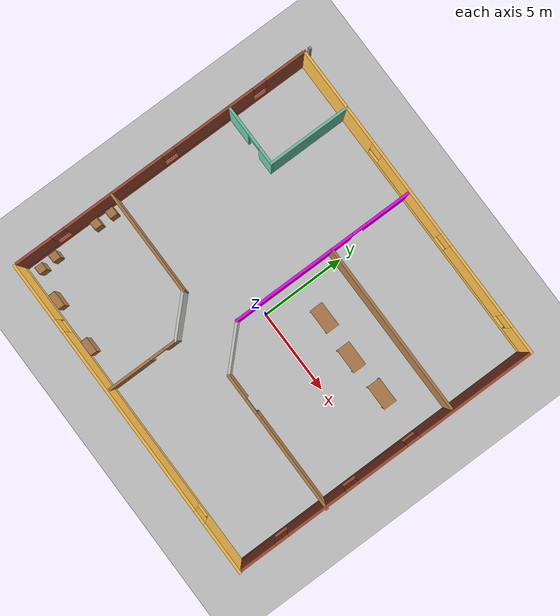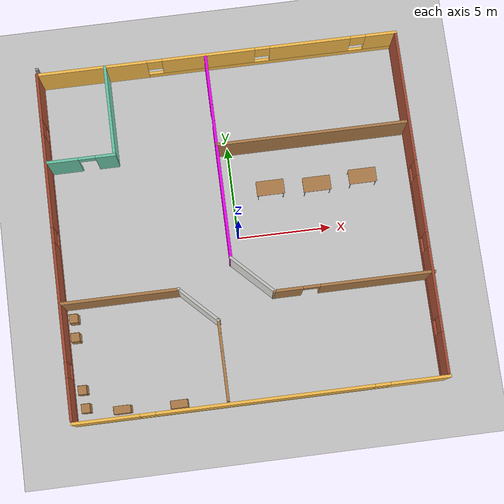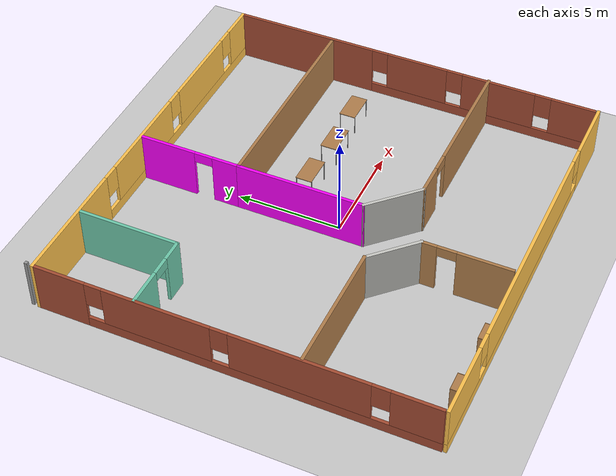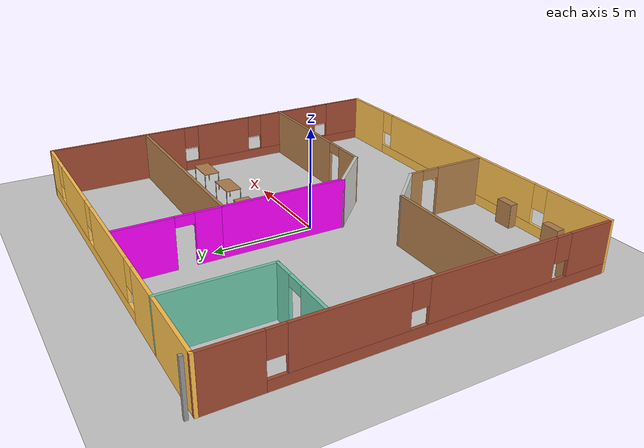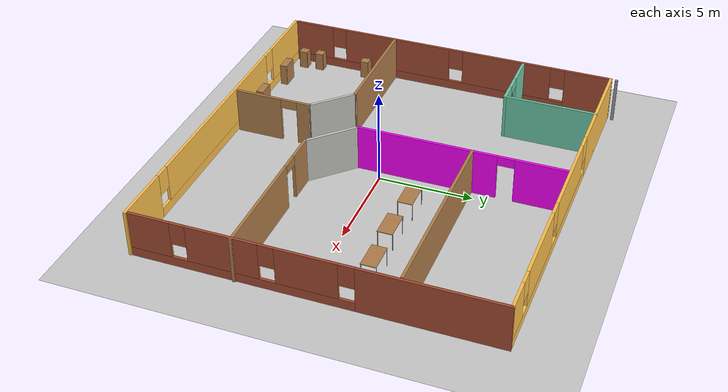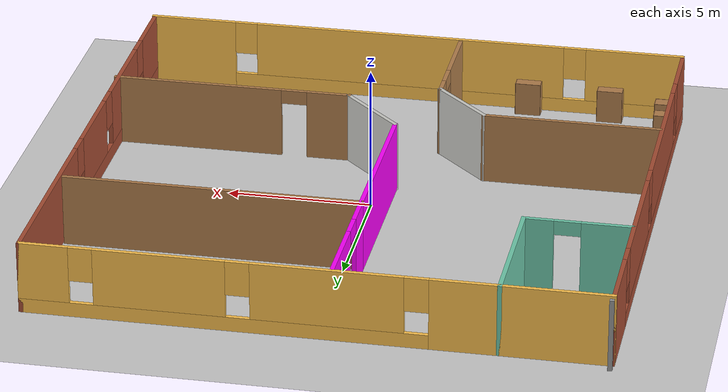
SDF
<sdf version="1.6">
 <world name="default">
  <plugin name="script" filename="libscript.so"/>
  <light name="sun" type="directional">
   <pose>0 0 10 0 -0 0</pose>
   <diffuse>0.8 0.8 0.8 1</diffuse>
   <specular>0.2 0.2 0.2 1</specular>
   <attenuation>
    <range>1000</range>
    <constant>0.9</constant>
    <linear>0.01</linear>
    <quadratic>0.001</quadratic>
   </attenuation>
   <direction>-0.5 0.1 -0.9</direction>
  </light>
  <model name="ground_plane">
   <static>1</static>
   <link name="link">
    <collision name="collision">
     <geometry><plane><normal>0 0 1</normal><size>100 100</size></plane></geometry>
     <surface>
      <contact><collide_bitmask>65535</collide_bitmask></contact>
      <friction><ode><mu>100</mu><mu2>50</mu2></ode></friction>
     </surface>
    </collision>
    <visual name="visual">
     <cast_shadows>0</cast_shadows>
     <geometry><plane><normal>0 0 1</normal><size>100 100</size></plane></geometry>
     <material>
      <script><uri>file://media/materials/scripts/gazebo.material</uri><name>Gazebo/Grey</name></script>
     </material>
    </visual>
   </link>
  </model>
  <gravity>0 0 -9.8</gravity>
  <magnetic_field>6e-06 2.3e-05 -4.2e-05</magnetic_field>
  <atmosphere type="adiabatic"/>
  <physics name="default_physics" default="0" type="ode">
   <max_step_size>0.001</max_step_size>
   <real_time_factor>1</real_time_factor>
   <real_time_update_rate>1000</real_time_update_rate>
  </physics>
  <scene><ambient>0.4 0.4 0.4 1</ambient><background>0.7 0.7 0.7 1</background><shadows>1</shadows></scene>
  <spherical_coordinates>
   <surface_model>EARTH_WGS84</surface_model>
   <latitude_deg>0</latitude_deg>
   <longitude_deg>0</longitude_deg>
   <elevation>0</elevation>
   <heading_deg>0</heading_deg>
  </spherical_coordinates>
  <model name="office">
   <pose>0.078104 0.578612 0 0 -0 0</pose>
   <link name="Wall_11">
    <pose>-0.002319 -9.425 0 0 -0 3.14159</pose>
    <visual name="Wall_11_Visual_0">
     <pose>-8.18908 0 1.25 0 -0 0</pose>
     <geometry><box><size>3.12183 0.15 2.5</size></box></geometry>
     <material>
      <script><uri>file://media/materials/scripts/gazebo.material</uri><name>Gazebo/Grey</name></script>
      <ambient>1 0.764706 0.305882 1</ambient>
     </material>
     <meta><layer>0</layer></meta>
    </visual>
    <collision name="Wall_11_Collision_0">
     <geometry><box><size>3.12183 0.15 2.5</size></box></geometry>
     <pose>-8.18908 0 1.25 0 -0 0</pose>
    </collision>
    <visual name="Wall_11_Visual_1">
     <pose>1.56092 0 0.25 0 -0 0</pose>
     <geometry><box><size>16.3782 0.15 0.5</size></box></geometry>
     <material>
      <script><uri>file://media/materials/scripts/gazebo.material</uri><name>Gazebo/Grey</name></script>
      <ambient>1 0.764706 0.305882 1</ambient>
     </material>
     <meta><layer>0</layer></meta>
    </visual>
    <collision name="Wall_11_Collision_1">
     <geometry><box><size>16.3782 0.15 0.5</size></box></geometry>
     <pose>1.56092 0 0.25 0 -0 0</pose>
    </collision>
    <visual name="Wall_11_Visual_2">
     <pose>-0.200284 0 1.5 0 -0 0</pose>
     <geometry><box><size>11.2558 0.15 2</size></box></geometry>
     <material>
      <script><uri>file://media/materials/scripts/gazebo.material</uri><name>Gazebo/Grey</name></script>
      <ambient>1 0.764706 0.305882 1</ambient>
     </material>
     <meta><layer>0</layer></meta>
    </visual>
    <collision name="Wall_11_Collision_2">
     <geometry><box><size>11.2558 0.15 2</size></box></geometry>
     <pose>-0.200284 0 1.5 0 -0 0</pose>
    </collision>
    <visual name="Wall_11_Visual_3">
     <pose>7.9888 0 1.5 0 -0 0</pose>
     <geometry><box><size>3.5224 0.15 2</size></box></geometry>
     <material>
      <script><uri>file://media/materials/scripts/gazebo.material</uri><name>Gazebo/Grey</name></script>
      <ambient>1 0.764706 0.305882 1</ambient>
     </material>
     <meta><layer>0</layer></meta>
    </visual>
    <collision name="Wall_11_Collision_3">
     <geometry><box><size>3.5224 0.15 2</size></box></geometry>
     <pose>7.9888 0 1.5 0 -0 0</pose>
    </collision>
    <visual name="Wall_11_Visual_4">
     <pose>-6.22816 0 1.9 0 -0 0</pose>
     <geometry><box><size>0.8 0.15 1.2</size></box></geometry>
     <material>
      <script><uri>file://media/materials/scripts/gazebo.material</uri><name>Gazebo/Grey</name></script>
      <ambient>1 0.764706 0.305882 1</ambient>
     </material>
     <meta><layer>0</layer></meta>
    </visual>
    <collision name="Wall_11_Collision_4">
     <geometry><box><size>0.8 0.15 1.2</size></box></geometry>
     <pose>-6.22816 0 1.9 0 -0 0</pose>
    </collision>
    <visual name="Wall_11_Visual_5">
     <pose>5.8276 0 1.9 0 -0 0</pose>
     <geometry><box><size>0.8 0.15 1.2</size></box></geometry>
     <material>
      <script><uri>file://media/materials/scripts/gazebo.material</uri><name>Gazebo/Grey</name></script>
      <ambient>1 0.764706 0.305882 1</ambient>
     </material>
     <meta><layer>0</layer></meta>
    </visual>
    <collision name="Wall_11_Collision_5">
     <geometry><box><size>0.8 0.15 1.2</size></box></geometry>
     <pose>5.8276 0 1.9 0 -0 0</pose>
    </collision>
   </link>
   <link name="Wall_14">
    <collision name="Wall_14_Collision">
     <geometry><box><size>0.15 0.15 2.5</size></box></geometry>
     <pose>0 0 1.25 0 -0 0</pose>
    </collision>
    <visual name="Wall_14_Visual">
     <pose>0 0 1.25 0 -0 0</pose>
     <geometry><box><size>0.15 0.15 2.5</size></box></geometry>
     <material>
      <script><uri>file://media/materials/scripts/gazebo.material</uri><name>Gazebo/Grey</name></script>
      <ambient>1 1 1 1</ambient>
     </material>
     <meta><layer>0</layer></meta>
    </visual>
    <pose>-9.67732 9.425 0 0 -0 0</pose>
   </link>
   <link name="Wall_18">
    <pose>-0.038651 9.10862 0 0 -0 0</pose>
    <visual name="Wall_18_Visual_0">
     <pose>-6.75697 0 1.25 0 -0 0</pose>
     <geometry><box><size>5.98607 0.15 2.5</size></box></geometry>
     <material>
      <script><uri>file://media/materials/scripts/gazebo.material</uri><name>Gazebo/Grey</name></script>
      <ambient>1 0.764706 0.305882 1</ambient>
     </material>
     <meta><layer>0</layer></meta>
    </visual>
    <collision name="Wall_18_Collision_0">
     <geometry><box><size>5.98607 0.15 2.5</size></box></geometry>
     <pose>-6.75697 0 1.25 0 -0 0</pose>
    </collision>
    <visual name="Wall_18_Visual_1">
     <pose>2.99303 0 0.25 0 -0 0</pose>
     <geometry><box><size>13.5139 0.15 0.5</size></box></geometry>
     <material>
      <script><uri>file://media/materials/scripts/gazebo.material</uri><name>Gazebo/Grey</name></script>
      <ambient>1 0.764706 0.305882 1</ambient>
     </material>
     <meta><layer>0</layer></meta>
    </visual>
    <collision name="Wall_18_Collision_1">
     <geometry><box><size>13.5139 0.15 0.5</size></box></geometry>
     <pose>2.99303 0 0.25 0 -0 0</pose>
    </collision>
    <visual name="Wall_18_Visual_2">
     <pose>-0.451128 0 1.5 0 -0 0</pose>
     <geometry><box><size>5.0256 0.15 2</size></box></geometry>
     <material>
      <script><uri>file://media/materials/scripts/gazebo.material</uri><name>Gazebo/Grey</name></script>
      <ambient>1 0.764706 0.305882 1</ambient>
     </material>
     <meta><layer>0</layer></meta>
    </visual>
    <collision name="Wall_18_Collision_2">
     <geometry><box><size>5.0256 0.15 2</size></box></geometry>
     <pose>-0.451128 0 1.5 0 -0 0</pose>
    </collision>
    <visual name="Wall_18_Visual_3">
     <pose>5.05083 0 1.5 0 -0 0</pose>
     <geometry><box><size>4.37831 0.15 2</size></box></geometry>
     <material>
      <script><uri>file://media/materials/scripts/gazebo.material</uri><name>Gazebo/Grey</name></script>
      <ambient>1 0.764706 0.305882 1</ambient>
     </material>
     <meta><layer>0</layer></meta>
    </visual>
    <collision name="Wall_18_Collision_3">
     <geometry><box><size>4.37831 0.15 2</size></box></geometry>
     <pose>5.05083 0 1.5 0 -0 0</pose>
    </collision>
    <visual name="Wall_18_Visual_4">
     <pose>8.89499 0 1.5 0 -0 0</pose>
     <geometry><box><size>1.71001 0.15 2</size></box></geometry>
     <material>
      <script><uri>file://media/materials/scripts/gazebo.material</uri><name>Gazebo/Grey</name></script>
      <ambient>1 0.764706 0.305882 1</ambient>
     </material>
     <meta><layer>0</layer></meta>
    </visual>
    <collision name="Wall_18_Collision_4">
     <geometry><box><size>1.71001 0.15 2</size></box></geometry>
     <pose>8.89499 0 1.5 0 -0 0</pose>
    </collision>
    <visual name="Wall_18_Visual_5">
     <pose>-3.36393 0 1.9 0 -0 0</pose>
     <geometry><box><size>0.8 0.15 1.2</size></box></geometry>
     <material>
      <script><uri>file://media/materials/scripts/gazebo.material</uri><name>Gazebo/Grey</name></script>
      <ambient>1 0.764706 0.305882 1</ambient>
     </material>
     <meta><layer>0</layer></meta>
    </visual>
    <collision name="Wall_18_Collision_5">
     <geometry><box><size>0.8 0.15 1.2</size></box></geometry>
     <pose>-3.36393 0 1.9 0 -0 0</pose>
    </collision>
    <visual name="Wall_18_Visual_6">
     <pose>2.46167 0 1.9 0 -0 0</pose>
     <geometry><box><size>0.8 0.15 1.2</size></box></geometry>
     <material>
      <script><uri>file://media/materials/scripts/gazebo.material</uri><name>Gazebo/Grey</name></script>
      <ambient>1 0.764706 0.305882 1</ambient>
     </material>
     <meta><layer>0</layer></meta>
    </visual>
    <collision name="Wall_18_Collision_6">
     <geometry><box><size>0.8 0.15 1.2</size></box></geometry>
     <pose>2.46167 0 1.9 0 -0 0</pose>
    </collision>
    <visual name="Wall_18_Visual_7">
     <pose>7.63999 0 1.9 0 -0 0</pose>
     <geometry><box><size>0.8 0.15 1.2</size></box></geometry>
     <material>
      <script><uri>file://media/materials/scripts/gazebo.material</uri><name>Gazebo/Grey</name></script>
      <ambient>1 0.764706 0.305882 1</ambient>
     </material>
     <meta><layer>0</layer></meta>
    </visual>
    <collision name="Wall_18_Collision_7">
     <geometry><box><size>0.8 0.15 1.2</size></box></geometry>
     <pose>7.63999 0 1.9 0 -0 0</pose>
    </collision>
   </link>
   <link name="Wall_20">
    <pose>9.63635 -0.066378 0 0 0 -1.5708</pose>
    <visual name="Wall_20_Visual_0">
     <pose>-5.65013 0 1.25 0 -0 0</pose>
     <geometry><box><size>7.19974 0.15 2.5</size></box></geometry>
     <material>
      <script><uri>file://media/materials/scripts/gazebo.material</uri><name>Gazebo/Bricks</name></script>
      <ambient>1 1 1 1</ambient>
     </material>
     <meta><layer>0</layer></meta>
    </visual>
    <collision name="Wall_20_Collision_0">
     <geometry><box><size>7.19974 0.15 2.5</size></box></geometry>
     <pose>-5.65013 0 1.25 0 -0 0</pose>
    </collision>
    <visual name="Wall_20_Visual_1">
     <pose>3.59987 0 0.25 0 -0 0</pose>
     <geometry><box><size>11.3003 0.15 0.5</size></box></geometry>
     <material>
      <script><uri>file://media/materials/scripts/gazebo.material</uri><name>Gazebo/Bricks</name></script>
      <ambient>1 1 1 1</ambient>
     </material>
     <meta><layer>0</layer></meta>
    </visual>
    <collision name="Wall_20_Collision_1">
     <geometry><box><size>11.3003 0.15 0.5</size></box></geometry>
     <pose>3.59987 0 0.25 0 -0 0</pose>
    </collision>
    <visual name="Wall_20_Visual_2">
     <pose>0.291605 0 1.5 0 -0 0</pose>
     <geometry><box><size>3.08374 0.15 2</size></box></geometry>
     <material>
      <script><uri>file://media/materials/scripts/gazebo.material</uri><name>Gazebo/Bricks</name></script>
      <ambient>1 1 1 1</ambient>
     </material>
     <meta><layer>0</layer></meta>
    </visual>
    <collision name="Wall_20_Collision_2">
     <geometry><box><size>3.08374 0.15 2</size></box></geometry>
     <pose>0.291605 0 1.5 0 -0 0</pose>
    </collision>
    <visual name="Wall_20_Visual_3">
     <pose>4.45853 0 1.5 0 -0 0</pose>
     <geometry><box><size>3.65011 0.15 2</size></box></geometry>
     <material>
      <script><uri>file://media/materials/scripts/gazebo.material</uri><name>Gazebo/Bricks</name></script>
      <ambient>1 1 1 1</ambient>
     </material>
     <meta><layer>0</layer></meta>
    </visual>
    <collision name="Wall_20_Collision_3">
     <geometry><box><size>3.65011 0.15 2</size></box></geometry>
     <pose>4.45853 0 1.5 0 -0 0</pose>
    </collision>
    <visual name="Wall_20_Visual_4">
     <pose>8.16679 0 1.5 0 -0 0</pose>
     <geometry><box><size>2.16641 0.15 2</size></box></geometry>
     <material>
      <script><uri>file://media/materials/scripts/gazebo.material</uri><name>Gazebo/Bricks</name></script>
      <ambient>1 1 1 1</ambient>
     </material>
     <meta><layer>0</layer></meta>
    </visual>
    <collision name="Wall_20_Collision_4">
     <geometry><box><size>2.16641 0.15 2</size></box></geometry>
     <pose>8.16679 0 1.5 0 -0 0</pose>
    </collision>
    <visual name="Wall_20_Visual_5">
     <pose>-1.65026 0 1.9 0 -0 0</pose>
     <geometry><box><size>0.8 0.15 1.2</size></box></geometry>
     <material>
      <script><uri>file://media/materials/scripts/gazebo.material</uri><name>Gazebo/Bricks</name></script>
      <ambient>1 1 1 1</ambient>
     </material>
     <meta><layer>0</layer></meta>
    </visual>
    <collision name="Wall_20_Collision_5">
     <geometry><box><size>0.8 0.15 1.2</size></box></geometry>
     <pose>-1.65026 0 1.9 0 -0 0</pose>
    </collision>
    <visual name="Wall_20_Visual_6">
     <pose>2.23347 0 1.9 0 -0 0</pose>
     <geometry><box><size>0.8 0.15 1.2</size></box></geometry>
     <material>
      <script><uri>file://media/materials/scripts/gazebo.material</uri><name>Gazebo/Bricks</name></script>
      <ambient>1 1 1 1</ambient>
     </material>
     <meta><layer>0</layer></meta>
    </visual>
    <collision name="Wall_20_Collision_6">
     <geometry><box><size>0.8 0.15 1.2</size></box></geometry>
     <pose>2.23347 0 1.9 0 -0 0</pose>
    </collision>
    <visual name="Wall_20_Visual_7">
     <pose>6.68359 0 1.9 0 -0 0</pose>
     <geometry><box><size>0.8 0.15 1.2</size></box></geometry>
     <material>
      <script><uri>file://media/materials/scripts/gazebo.material</uri><name>Gazebo/Bricks</name></script>
      <ambient>1 1 1 1</ambient>
     </material>
     <meta><layer>0</layer></meta>
    </visual>
    <collision name="Wall_20_Collision_7">
     <geometry><box><size>0.8 0.15 1.2</size></box></geometry>
     <pose>6.68359 0 1.9 0 -0 0</pose>
    </collision>
   </link>
   <link name="Wall_22">
    <pose>-9.71365 -0.066378 0 0 0 -1.5708</pose>
    <visual name="Wall_22_Visual_0">
     <pose>-7.9561 0 1.25 0 -0 0</pose>
     <geometry><box><size>2.5878 0.15 2.5</size></box></geometry>
     <material>
      <script><uri>file://media/materials/scripts/gazebo.material</uri><name>Gazebo/Bricks</name></script>
      <ambient>1 1 1 1</ambient>
     </material>
     <meta><layer>0</layer></meta>
    </visual>
    <collision name="Wall_22_Collision_0">
     <geometry><box><size>2.5878 0.15 2.5</size></box></geometry>
     <pose>-7.9561 0 1.25 0 -0 0</pose>
    </collision>
    <visual name="Wall_22_Visual_1">
     <pose>1.2939 0 0.25 0 -0 0</pose>
     <geometry><box><size>15.9122 0.15 0.5</size></box></geometry>
     <material>
      <script><uri>file://media/materials/scripts/gazebo.material</uri><name>Gazebo/Bricks</name></script>
      <ambient>1 1 1 1</ambient>
     </material>
     <meta><layer>0</layer></meta>
    </visual>
    <collision name="Wall_22_Collision_1">
     <geometry><box><size>15.9122 0.15 0.5</size></box></geometry>
     <pose>1.2939 0 0.25 0 -0 0</pose>
    </collision>
    <visual name="Wall_22_Visual_2">
     <pose>-3.3494 0 1.5 0 -0 0</pose>
     <geometry><box><size>5.0256 0.15 2</size></box></geometry>
     <material>
      <script><uri>file://media/materials/scripts/gazebo.material</uri><name>Gazebo/Bricks</name></script>
      <ambient>1 1 1 1</ambient>
     </material>
     <meta><layer>0</layer></meta>
    </visual>
    <collision name="Wall_22_Collision_2">
     <geometry><box><size>5.0256 0.15 2</size></box></geometry>
     <pose>-3.3494 0 1.5 0 -0 0</pose>
    </collision>
    <visual name="Wall_22_Visual_3">
     <pose>3.08304 0 1.5 0 -0 0</pose>
     <geometry><box><size>6.23927 0.15 2</size></box></geometry>
     <material>
      <script><uri>file://media/materials/scripts/gazebo.material</uri><name>Gazebo/Bricks</name></script>
      <ambient>1 1 1 1</ambient>
     </material>
     <meta><layer>0</layer></meta>
    </visual>
    <collision name="Wall_22_Collision_3">
     <geometry><box><size>6.23927 0.15 2</size></box></geometry>
     <pose>3.08304 0 1.5 0 -0 0</pose>
    </collision>
    <visual name="Wall_22_Visual_4">
     <pose>8.12634 0 1.5 0 -0 0</pose>
     <geometry><box><size>2.24733 0.15 2</size></box></geometry>
     <material>
      <script><uri>file://media/materials/scripts/gazebo.material</uri><name>Gazebo/Bricks</name></script>
      <ambient>1 1 1 1</ambient>
     </material>
     <meta><layer>0</layer></meta>
    </visual>
    <collision name="Wall_22_Collision_4">
     <geometry><box><size>2.24733 0.15 2</size></box></geometry>
     <pose>8.12634 0 1.5 0 -0 0</pose>
    </collision>
    <visual name="Wall_22_Visual_5">
     <pose>-6.2622 0 1.9 0 -0 0</pose>
     <geometry><box><size>0.8 0.15 1.2</size></box></geometry>
     <material>
      <script><uri>file://media/materials/scripts/gazebo.material</uri><name>Gazebo/Bricks</name></script>
      <ambient>1 1 1 1</ambient>
     </material>
     <meta><layer>0</layer></meta>
    </visual>
    <collision name="Wall_22_Collision_5">
     <geometry><box><size>0.8 0.15 1.2</size></box></geometry>
     <pose>-6.2622 0 1.9 0 -0 0</pose>
    </collision>
    <visual name="Wall_22_Visual_6">
     <pose>-0.436595 0 1.9 0 -0 0</pose>
     <geometry><box><size>0.8 0.15 1.2</size></box></geometry>
     <material>
      <script><uri>file://media/materials/scripts/gazebo.material</uri><name>Gazebo/Bricks</name></script>
      <ambient>1 1 1 1</ambient>
     </material>
     <meta><layer>0</layer></meta>
    </visual>
    <collision name="Wall_22_Collision_6">
     <geometry><box><size>0.8 0.15 1.2</size></box></geometry>
     <pose>-0.436595 0 1.9 0 -0 0</pose>
    </collision>
    <visual name="Wall_22_Visual_7">
     <pose>6.60267 0 1.9 0 -0 0</pose>
     <geometry><box><size>0.8 0.15 1.2</size></box></geometry>
     <material>
      <script><uri>file://media/materials/scripts/gazebo.material</uri><name>Gazebo/Bricks</name></script>
      <ambient>1 1 1 1</ambient>
     </material>
     <meta><layer>0</layer></meta>
    </visual>
    <collision name="Wall_22_Collision_7">
     <geometry><box><size>0.8 0.15 1.2</size></box></geometry>
     <pose>6.60267 0 1.9 0 -0 0</pose>
    </collision>
   </link>
   <link name="Wall_24">
    <collision name="Wall_24_Collision">
     <geometry><box><size>5 0.15 2.5</size></box></geometry>
     <pose>0 0 1.25 0 -0 0</pose>
    </collision>
    <visual name="Wall_24_Visual">
     <pose>0 0 1.25 0 -0 0</pose>
     <geometry><box><size>5 0.15 2.5</size></box></geometry>
     <material>
      <script><uri>file://media/materials/scripts/gazebo.material</uri><name>Gazebo/Grey</name></script>
      <ambient>0.435294 0.796078 0.67451 1</ambient>
     </material>
     <meta><layer>0</layer></meta>
    </visual>
    <pose>-6.07265 6.68362 0 0 0 -1.5708</pose>
   </link>
   <link name="Wall_25">
    <pose>-7.87265 4.25862 0 0 -0 3.14159</pose>
    <visual name="Wall_25_Visual_0">
     <pose>-1.3343 0 1.25 0 -0 0</pose>
     <geometry><box><size>1.0814 0.15 2.5</size></box></geometry>
     <material>
      <script><uri>file://media/materials/scripts/gazebo.material</uri><name>Gazebo/Grey</name></script>
      <ambient>0.435294 0.796078 0.67451 1</ambient>
     </material>
     <meta><layer>0</layer></meta>
    </visual>
    <collision name="Wall_25_Collision_0">
     <geometry><box><size>1.0814 0.15 2.5</size></box></geometry>
     <pose>-1.3343 0 1.25 0 -0 0</pose>
    </collision>
    <visual name="Wall_25_Visual_1">
     <pose>0.9907 0 1.25 0 -0 0</pose>
     <geometry><box><size>1.7686 0.15 2.5</size></box></geometry>
     <material>
      <script><uri>file://media/materials/scripts/gazebo.material</uri><name>Gazebo/Grey</name></script>
      <ambient>0.435294 0.796078 0.67451 1</ambient>
     </material>
     <meta><layer>0</layer></meta>
    </visual>
    <collision name="Wall_25_Collision_1">
     <geometry><box><size>1.7686 0.15 2.5</size></box></geometry>
     <pose>0.9907 0 1.25 0 -0 0</pose>
    </collision>
    <visual name="Wall_25_Visual_2">
     <pose>-0.343599 0 2.25 0 -0 0</pose>
     <geometry><box><size>0.9 0.15 0.5</size></box></geometry>
     <material>
      <script><uri>file://media/materials/scripts/gazebo.material</uri><name>Gazebo/Grey</name></script>
      <ambient>0.435294 0.796078 0.67451 1</ambient>
     </material>
     <meta><layer>0</layer></meta>
    </visual>
    <collision name="Wall_25_Collision_2">
     <geometry><box><size>0.9 0.15 0.5</size></box></geometry>
     <pose>-0.343599 0 2.25 0 -0 0</pose>
    </collision>
   </link>
   <link name="Wall_27">
    <collision name="Wall_27_Collision">
     <geometry><box><size>6.25 0.15 2.5</size></box></geometry>
     <pose>0 0 1.25 0 -0 0</pose>
    </collision>
    <visual name="Wall_27_Visual">
     <pose>0 0 1.25 0 -0 0</pose>
     <geometry><box><size>6.25 0.15 2.5</size></box></geometry>
     <material>
      <script><uri>file://media/materials/scripts/gazebo.material</uri><name>Gazebo/Wood</name></script>
      <ambient>1 1 1 1</ambient>
     </material>
     <meta><layer>0</layer></meta>
    </visual>
    <pose>-6.58274 -3.27079 0 0 -0 0</pose>
   </link>
   <link name="Wall_28">
    <collision name="Wall_28_Collision">
     <geometry><box><size>2.75 0.15 2.5</size></box></geometry>
     <pose>0 0 1.25 0 -0 0</pose>
    </collision>
    <visual name="Wall_28_Visual">
     <pose>0 0 1.25 0 -0 0</pose>
     <geometry><box><size>2.75 0.15 2.5</size></box></geometry>
     <material>
      <script><uri>file://media/materials/scripts/gazebo.material</uri><name>Gazebo/CeilingTiled</name></script>
      <ambient>1 1 1 1</ambient>
     </material>
     <meta><layer>0</layer></meta>
    </visual>
    <pose>-2.6135 -4.19002 0 0 0 -0.785398</pose>
   </link>
   <link name="Wall_29">
    <pose>-1.69426 -7.15926 0 0 0 -1.5708</pose>
    <visual name="Wall_29_Visual_0">
     <pose>-1.73488 0 1.25 0 -0 0</pose>
     <geometry><box><size>0.780235 0.15 2.5</size></box></geometry>
     <material>
      <script><uri>file://media/materials/scripts/gazebo.material</uri><name>Gazebo/Wood</name></script>
      <ambient>1 1 1 1</ambient>
     </material>
     <meta><layer>0</layer></meta>
    </visual>
    <collision name="Wall_29_Collision_0">
     <geometry><box><size>0.780235 0.15 2.5</size></box></geometry>
     <pose>-1.73488 0 1.25 0 -0 0</pose>
    </collision>
    <visual name="Wall_29_Visual_1">
     <pose>0.840118 0 1.25 0 -0 0</pose>
     <geometry><box><size>2.56976 0.15 2.5</size></box></geometry>
     <material>
      <script><uri>file://media/materials/scripts/gazebo.material</uri><name>Gazebo/Wood</name></script>
      <ambient>1 1 1 1</ambient>
     </material>
     <meta><layer>0</layer></meta>
    </visual>
    <collision name="Wall_29_Collision_1">
     <geometry><box><size>2.56976 0.15 2.5</size></box></geometry>
     <pose>0.840118 0 1.25 0 -0 0</pose>
    </collision>
    <visual name="Wall_29_Visual_2">
     <pose>-0.894765 0 2.25 0 -0 0</pose>
     <geometry><box><size>0.9 0.15 0.5</size></box></geometry>
     <material>
      <script><uri>file://media/materials/scripts/gazebo.material</uri><name>Gazebo/Wood</name></script>
      <ambient>1 1 1 1</ambient>
     </material>
     <meta><layer>0</layer></meta>
    </visual>
    <collision name="Wall_29_Collision_2">
     <geometry><box><size>0.9 0.15 0.5</size></box></geometry>
     <pose>-0.894765 0 2.25 0 -0 0</pose>
    </collision>
   </link>
   <link name="Wall_31">
    <collision name="Wall_31_Collision">
     <geometry><box><size>3 0.15 2.5</size></box></geometry>
     <pose>0 0 1.25 0 -0 0</pose>
    </collision>
    <visual name="Wall_31_Visual">
     <pose>0 0 1.25 0 -0 0</pose>
     <geometry><box><size>3 0.15 2.5</size></box></geometry>
     <material>
      <script><uri>file://media/materials/scripts/gazebo.material</uri><name>Gazebo/CeilingTiled</name></script>
      <ambient>1 1 1 1</ambient>
     </material>
     <meta><layer>0</layer></meta>
    </visual>
    <pose>0.356025 -2.98383 0 0 0 -0.785398</pose>
   </link>
   <link name="Wall_32">
    <pose>5.53865 -3.99146 0 0 -0 0</pose>
    <visual name="Wall_32_Visual_0">
     <pose>-3.4628 0 1.25 0 -0 0</pose>
     <geometry><box><size>1.57439 0.15 2.5</size></box></geometry>
     <material>
      <script><uri>file://media/materials/scripts/gazebo.material</uri><name>Gazebo/Wood</name></script>
      <ambient>1 1 1 1</ambient>
     </material>
     <meta><layer>0</layer></meta>
    </visual>
    <collision name="Wall_32_Collision_0">
     <geometry><box><size>1.57439 0.15 2.5</size></box></geometry>
     <pose>-3.4628 0 1.25 0 -0 0</pose>
    </collision>
    <visual name="Wall_32_Visual_1">
     <pose>1.2372 0 1.25 0 -0 0</pose>
     <geometry><box><size>6.02561 0.15 2.5</size></box></geometry>
     <material>
      <script><uri>file://media/materials/scripts/gazebo.material</uri><name>Gazebo/Wood</name></script>
      <ambient>1 1 1 1</ambient>
     </material>
     <meta><layer>0</layer></meta>
    </visual>
    <collision name="Wall_32_Collision_1">
     <geometry><box><size>6.02561 0.15 2.5</size></box></geometry>
     <pose>1.2372 0 1.25 0 -0 0</pose>
    </collision>
    <visual name="Wall_32_Visual_2">
     <pose>-2.22561 0 2.25 0 -0 0</pose>
     <geometry><box><size>0.9 0.15 0.5</size></box></geometry>
     <material>
      <script><uri>file://media/materials/scripts/gazebo.material</uri><name>Gazebo/Wood</name></script>
      <ambient>1 1 1 1</ambient>
     </material>
     <meta><layer>0</layer></meta>
    </visual>
    <collision name="Wall_32_Collision_2">
     <geometry><box><size>0.9 0.15 0.5</size></box></geometry>
     <pose>-2.22561 0 2.25 0 -0 0</pose>
    </collision>
   </link>
   <link name="Wall_34">
    <collision name="Wall_34_Collision">
     <geometry><box><size>6.25 0.15 2.5</size></box></geometry>
     <pose>0 0 1.25 0 -0 0</pose>
    </collision>
    <visual name="Wall_34_Visual">
     <pose>0 0 1.25 0 -0 0</pose>
     <geometry><box><size>6.25 0.15 2.5</size></box></geometry>
     <material>
      <script><uri>file://media/materials/scripts/gazebo.material</uri><name>Gazebo/Grey</name></script>
      <ambient>1 0 1 1</ambient>
     </material>
     <meta><layer>0</layer></meta>
    </visual>
    <pose>-0.651602 1.07379 0 0 -0 1.5708</pose>
   </link>
   <link name="Wall_35">
    <collision name="Wall_35_Collision">
     <geometry><box><size>10.25 0.15 2.5</size></box></geometry>
     <pose>0 0 1.25 0 -0 0</pose>
    </collision>
    <visual name="Wall_35_Visual">
     <pose>0 0 1.25 0 -0 0</pose>
     <geometry><box><size>10.25 0.15 2.5</size></box></geometry>
     <material>
      <script><uri>file://media/materials/scripts/gazebo.material</uri><name>Gazebo/Wood</name></script>
      <ambient>1 1 1 1</ambient>
     </material>
     <meta><layer>0</layer></meta>
    </visual>
    <pose>4.3984 4.12379 0 0 -0 0</pose>
   </link>
   <link name="Wall_38">
    <pose>-0.651602 6.54879 0 0 -0 1.5708</pose>
    <visual name="Wall_38_Visual_0">
     <pose>-1.81331 0 1.25 0 -0 0</pose>
     <geometry><box><size>1.37338 0.15 2.5</size></box></geometry>
     <material>
      <script><uri>file://media/materials/scripts/gazebo.material</uri><name>Gazebo/Grey</name></script>
      <ambient>1 0 1 1</ambient>
     </material>
     <meta><layer>0</layer></meta>
    </visual>
    <collision name="Wall_38_Collision_0">
     <geometry><box><size>1.37338 0.15 2.5</size></box></geometry>
     <pose>-1.81331 0 1.25 0 -0 0</pose>
    </collision>
    <visual name="Wall_38_Visual_1">
     <pose>1.13669 0 1.25 0 -0 0</pose>
     <geometry><box><size>2.72662 0.15 2.5</size></box></geometry>
     <material>
      <script><uri>file://media/materials/scripts/gazebo.material</uri><name>Gazebo/Grey</name></script>
      <ambient>1 0 1 1</ambient>
     </material>
     <meta><layer>0</layer></meta>
    </visual>
    <collision name="Wall_38_Collision_1">
     <geometry><box><size>2.72662 0.15 2.5</size></box></geometry>
     <pose>1.13669 0 1.25 0 -0 0</pose>
    </collision>
    <visual name="Wall_38_Visual_2">
     <pose>-0.676618 0 2.25 0 -0 0</pose>
     <geometry><box><size>0.9 0.15 0.5</size></box></geometry>
     <material>
      <script><uri>file://media/materials/scripts/gazebo.material</uri><name>Gazebo/Grey</name></script>
      <ambient>1 0 1 1</ambient>
     </material>
     <meta><layer>0</layer></meta>
    </visual>
    <collision name="Wall_38_Collision_2">
     <geometry><box><size>0.9 0.15 0.5</size></box></geometry>
     <pose>-0.676618 0 2.25 0 -0 0</pose>
    </collision>
   </link>
   <static>1</static>
  </model>
  <model name="table">
   <static>1</static>
   <link name="link">
    <collision name="surface">
     <pose>0 0 1 0 -0 0</pose>
     <geometry><box><size>1.5 0.8 0.03</size></box></geometry>
     <surface><friction><ode><mu>0.6</mu><mu2>0.6</mu2></ode></friction></surface>
    </collision>
    <visual name="visual1">
     <pose>0 0 1 0 -0 0</pose>
     <geometry><box><size>1.5 0.8 0.03</size></box></geometry>
     <material>
      <script><uri>file://media/materials/scripts/gazebo.material</uri><name>Gazebo/Wood</name></script>
     </material>
    </visual>
    <collision name="front_left_leg">
     <pose>0.68 0.38 0.5 0 -0 0</pose>
     <geometry><cylinder><radius>0.02</radius><length>1</length></cylinder></geometry>
    </collision>
    <visual name="front_left_leg">
     <pose>0.68 0.38 0.5 0 -0 0</pose>
     <geometry><cylinder><radius>0.02</radius><length>1</length></cylinder></geometry>
     <material>
      <script><uri>file://media/materials/scripts/gazebo.material</uri><name>Gazebo/Grey</name></script>
     </material>
    </visual>
    <collision name="front_right_leg">
     <pose>0.68 -0.38 0.5 0 -0 0</pose>
     <geometry><cylinder><radius>0.02</radius><length>1</length></cylinder></geometry>
    </collision>
    <visual name="front_right_leg">
     <pose>0.68 -0.38 0.5 0 -0 0</pose>
     <geometry><cylinder><radius>0.02</radius><length>1</length></cylinder></geometry>
     <material>
      <script><uri>file://media/materials/scripts/gazebo.material</uri><name>Gazebo/Grey</name></script>
     </material>
    </visual>
    <collision name="back_right_leg">
     <pose>-0.68 -0.38 0.5 0 -0 0</pose>
     <geometry><cylinder><radius>0.02</radius><length>1</length></cylinder></geometry>
    </collision>
    <visual name="back_right_leg">
     <pose>-0.68 -0.38 0.5 0 -0 0</pose>
     <geometry><cylinder><radius>0.02</radius><length>1</length></cylinder></geometry>
     <material>
      <script><uri>file://media/materials/scripts/gazebo.material</uri><name>Gazebo/Grey</name></script>
     </material>
    </visual>
    <collision name="back_left_leg">
     <pose>-0.68 0.38 0.5 0 -0 0</pose>
     <geometry><cylinder><radius>0.02</radius><length>1</length></cylinder></geometry>
    </collision>
    <visual name="back_left_leg">
     <pose>-0.68 0.38 0.5 0 -0 0</pose>
     <geometry><cylinder><radius>0.02</radius><length>1</length></cylinder></geometry>
     <material>
      <script><uri>file://media/materials/scripts/gazebo.material</uri><name>Gazebo/Grey</name></script>
     </material>
    </visual>
   </link>
   <pose>2.01405 2.36525 0 0 -0 0</pose>
  </model>
  <model name="table_0">
   <static>1</static>
   <link name="link">
    <collision name="surface">
     <pose>0 0 1 0 -0 0</pose>
     <geometry><box><size>1.5 0.8 0.03</size></box></geometry>
     <surface><friction><ode><mu>0.6</mu><mu2>0.6</mu2></ode></friction></surface>
    </collision>
    <visual name="visual1">
     <pose>0 0 1 0 -0 0</pose>
     <geometry><box><size>1.5 0.8 0.03</size></box></geometry>
     <material>
      <script><uri>file://media/materials/scripts/gazebo.material</uri><name>Gazebo/Wood</name></script>
     </material>
    </visual>
    <collision name="front_left_leg">
     <pose>0.68 0.38 0.5 0 -0 0</pose>
     <geometry><cylinder><radius>0.02</radius><length>1</length></cylinder></geometry>
    </collision>
    <visual name="front_left_leg">
     <pose>0.68 0.38 0.5 0 -0 0</pose>
     <geometry><cylinder><radius>0.02</radius><length>1</length></cylinder></geometry>
     <material>
      <script><uri>file://media/materials/scripts/gazebo.material</uri><name>Gazebo/Grey</name></script>
     </material>
    </visual>
    <collision name="front_right_leg">
     <pose>0.68 -0.38 0.5 0 -0 0</pose>
     <geometry><cylinder><radius>0.02</radius><length>1</length></cylinder></geometry>
    </collision>
    <visual name="front_right_leg">
     <pose>0.68 -0.38 0.5 0 -0 0</pose>
     <geometry><cylinder><radius>0.02</radius><length>1</length></cylinder></geometry>
     <material>
      <script><uri>file://media/materials/scripts/gazebo.material</uri><name>Gazebo/Grey</name></script>
     </material>
    </visual>
    <collision name="back_right_leg">
     <pose>-0.68 -0.38 0.5 0 -0 0</pose>
     <geometry><cylinder><radius>0.02</radius><length>1</length></cylinder></geometry>
    </collision>
    <visual name="back_right_leg">
     <pose>-0.68 -0.38 0.5 0 -0 0</pose>
     <geometry><cylinder><radius>0.02</radius><length>1</length></cylinder></geometry>
     <material>
      <script><uri>file://media/materials/scripts/gazebo.material</uri><name>Gazebo/Grey</name></script>
     </material>
    </visual>
    <collision name="back_left_leg">
     <pose>-0.68 0.38 0.5 0 -0 0</pose>
     <geometry><cylinder><radius>0.02</radius><length>1</length></cylinder></geometry>
    </collision>
    <visual name="back_left_leg">
     <pose>-0.68 0.38 0.5 0 -0 0</pose>
     <geometry><cylinder><radius>0.02</radius><length>1</length></cylinder></geometry>
     <material>
      <script><uri>file://media/materials/scripts/gazebo.material</uri><name>Gazebo/Grey</name></script>
     </material>
    </visual>
   </link>
   <pose>4.51769 2.26549 0 0 -0 0</pose>
  </model>
  <model name="table_1">
   <static>1</static>
   <link name="link">
    <collision name="surface">
     <pose>0 0 1 0 -0 0</pose>
     <geometry><box><size>1.5 0.8 0.03</size></box></geometry>
     <surface><friction><ode><mu>0.6</mu><mu2>0.6</mu2></ode></friction></surface>
    </collision>
    <visual name="visual1">
     <pose>0 0 1 0 -0 0</pose>
     <geometry><box><size>1.5 0.8 0.03</size></box></geometry>
     <material>
      <script><uri>file://media/materials/scripts/gazebo.material</uri><name>Gazebo/Wood</name></script>
     </material>
    </visual>
    <collision name="front_left_leg">
     <pose>0.68 0.38 0.5 0 -0 0</pose>
     <geometry><cylinder><radius>0.02</radius><length>1</length></cylinder></geometry>
    </collision>
    <visual name="front_left_leg">
     <pose>0.68 0.38 0.5 0 -0 0</pose>
     <geometry><cylinder><radius>0.02</radius><length>1</length></cylinder></geometry>
     <material>
      <script><uri>file://media/materials/scripts/gazebo.material</uri><name>Gazebo/Grey</name></script>
     </material>
    </visual>
    <collision name="front_right_leg">
     <pose>0.68 -0.38 0.5 0 -0 0</pose>
     <geometry><cylinder><radius>0.02</radius><length>1</length></cylinder></geometry>
    </collision>
    <visual name="front_right_leg">
     <pose>0.68 -0.38 0.5 0 -0 0</pose>
     <geometry><cylinder><radius>0.02</radius><length>1</length></cylinder></geometry>
     <material>
      <script><uri>file://media/materials/scripts/gazebo.material</uri><name>Gazebo/Grey</name></script>
     </material>
    </visual>
    <collision name="back_right_leg">
     <pose>-0.68 -0.38 0.5 0 -0 0</pose>
     <geometry><cylinder><radius>0.02</radius><length>1</length></cylinder></geometry>
    </collision>
    <visual name="back_right_leg">
     <pose>-0.68 -0.38 0.5 0 -0 0</pose>
     <geometry><cylinder><radius>0.02</radius><length>1</length></cylinder></geometry>
     <material>
      <script><uri>file://media/materials/scripts/gazebo.material</uri><name>Gazebo/Grey</name></script>
     </material>
    </visual>
    <collision name="back_left_leg">
     <pose>-0.68 0.38 0.5 0 -0 0</pose>
     <geometry><cylinder><radius>0.02</radius><length>1</length></cylinder></geometry>
    </collision>
    <visual name="back_left_leg">
     <pose>-0.68 0.38 0.5 0 -0 0</pose>
     <geometry><cylinder><radius>0.02</radius><length>1</length></cylinder></geometry>
     <material>
      <script><uri>file://media/materials/scripts/gazebo.material</uri><name>Gazebo/Grey</name></script>
     </material>
    </visual>
   </link>
   <pose>7.0072 2.40003 0 0 -0 0</pose>
  </model>
  <model name="cabinet">
   <static>1</static>
   <link name="cabinet_bottom_plate">
    <inertial>
     <pose>0 0 -1 0 -0 0</pose>
     <inertia><ixx>2.05</ixx><ixy>0</ixy><ixz>0</ixz><iyy>2.05</iyy><iyz>0</iyz><izz>2.05</izz></inertia>
     <mass>25</mass>
    </inertial>
    <collision name="cabinet_bottom_plate_geom">
     <pose>0 0 0.01 0 -0 0</pose>
     <geometry><box><size>0.45 0.45 0.02</size></box></geometry>
    </collision>
    <visual name="cabinet_bottom_plate_geom_visual">
     <pose>0 0 0.01 0 -0 0</pose>
     <geometry><box><size>0.45 0.45 0.02</size></box></geometry>
     <material>
      <script><uri>file://media/materials/scripts/gazebo.material</uri><name>Gazebo/Wood</name></script>
     </material>
    </visual>
    <collision name="cabinet_bottom_plate_geom_cabinet_back_plate">
     <pose>0.235 0 0.51 0 -0 0</pose>
     <geometry><box><size>0.02 0.45 1.02</size></box></geometry>
    </collision>
    <visual name="cabinet_bottom_plate_geom_cabinet_back_plate_visual">
     <pose>0.235 0 0.51 0 -0 0</pose>
     <geometry><box><size>0.02 0.45 1.02</size></box></geometry>
     <material>
      <script><uri>file://media/materials/scripts/gazebo.material</uri><name>Gazebo/Wood</name></script>
     </material>
    </visual>
    <collision name="cabinet_bottom_plate_geom_cabinet_left_plate">
     <pose>0 0.235 0.51 0 -0 0</pose>
     <geometry><box><size>0.45 0.02 1.02</size></box></geometry>
    </collision>
    <visual name="cabinet_bottom_plate_geom_cabinet_left_plate_visual">
     <pose>0 0.235 0.51 0 -0 0</pose>
     <geometry><box><size>0.45 0.02 1.02</size></box></geometry>
     <material>
      <script><uri>file://media/materials/scripts/gazebo.material</uri><name>Gazebo/Wood</name></script>
     </material>
    </visual>
    <collision name="cabinet_bottom_plate_geom_cabinet_middle_plate">
     <pose>0 0 0.51 0 -0 0</pose>
     <geometry><box><size>0.45 0.45 0.02</size></box></geometry>
    </collision>
    <visual name="cabinet_bottom_plate_geom_cabinet_middle_plate_visual">
     <pose>0 0 0.51 0 -0 0</pose>
     <geometry><box><size>0.45 0.45 0.02</size></box></geometry>
     <material>
      <script><uri>file://media/materials/scripts/gazebo.material</uri><name>Gazebo/Wood</name></script>
     </material>
    </visual>
    <collision name="cabinet_bottom_plate_geom_cabinet_right_plate">
     <pose>0 -0.235 0.51 0 -0 0</pose>
     <geometry><box><size>0.45 0.02 1.02</size></box></geometry>
    </collision>
    <visual name="cabinet_bottom_plate_geom_cabinet_right_plate_visual">
     <pose>0 -0.235 0.51 0 -0 0</pose>
     <geometry><box><size>0.45 0.02 1.02</size></box></geometry>
     <material>
      <script><uri>file://media/materials/scripts/gazebo.material</uri><name>Gazebo/Wood</name></script>
     </material>
    </visual>
    <collision name="cabinet_bottom_plate_geom_cabinet_top_plate">
     <pose>0 0 1.01 0 -0 0</pose>
     <geometry><box><size>0.45 0.45 0.02</size></box></geometry>
    </collision>
    <visual name="cabinet_bottom_plate_geom_cabinet_top_plate_visual">
     <pose>0 0 1.01 0 -0 0</pose>
     <geometry><box><size>0.45 0.45 0.02</size></box></geometry>
     <material>
      <script><uri>file://media/materials/scripts/gazebo.material</uri><name>Gazebo/Wood</name></script>
     </material>
    </visual>
   </link>
   <pose>-9.01438 -8.0702 0 0 -0 0</pose>
  </model>
  <model name="cabinet_clone">
   <static>1</static>
   <link name="cabinet_bottom_plate">
    <inertial>
     <pose>0 0 -1 0 -0 0</pose>
     <inertia><ixx>2.05</ixx><ixy>0</ixy><ixz>0</ixz><iyy>2.05</iyy><iyz>0</iyz><izz>2.05</izz></inertia>
     <mass>25</mass>
    </inertial>
    <collision name="cabinet_bottom_plate_geom">
     <pose>0 0 0.01 0 -0 0</pose>
     <geometry><box><size>0.45 0.45 0.02</size></box></geometry>
    </collision>
    <visual name="cabinet_bottom_plate_geom_visual">
     <pose>0 0 0.01 0 -0 0</pose>
     <geometry><box><size>0.45 0.45 0.02</size></box></geometry>
     <material>
      <script><uri>file://media/materials/scripts/gazebo.material</uri><name>Gazebo/Wood</name></script>
     </material>
    </visual>
    <collision name="cabinet_bottom_plate_geom_cabinet_back_plate">
     <pose>0.235 0 0.51 0 -0 0</pose>
     <geometry><box><size>0.02 0.45 1.02</size></box></geometry>
    </collision>
    <visual name="cabinet_bottom_plate_geom_cabinet_back_plate_visual">
     <pose>0.235 0 0.51 0 -0 0</pose>
     <geometry><box><size>0.02 0.45 1.02</size></box></geometry>
     <material>
      <script><uri>file://media/materials/scripts/gazebo.material</uri><name>Gazebo/Wood</name></script>
     </material>
    </visual>
    <collision name="cabinet_bottom_plate_geom_cabinet_left_plate">
     <pose>0 0.235 0.51 0 -0 0</pose>
     <geometry><box><size>0.45 0.02 1.02</size></box></geometry>
    </collision>
    <visual name="cabinet_bottom_plate_geom_cabinet_left_plate_visual">
     <pose>0 0.235 0.51 0 -0 0</pose>
     <geometry><box><size>0.45 0.02 1.02</size></box></geometry>
     <material>
      <script><uri>file://media/materials/scripts/gazebo.material</uri><name>Gazebo/Wood</name></script>
     </material>
    </visual>
    <collision name="cabinet_bottom_plate_geom_cabinet_middle_plate">
     <pose>0 0 0.51 0 -0 0</pose>
     <geometry><box><size>0.45 0.45 0.02</size></box></geometry>
    </collision>
    <visual name="cabinet_bottom_plate_geom_cabinet_middle_plate_visual">
     <pose>0 0 0.51 0 -0 0</pose>
     <geometry><box><size>0.45 0.45 0.02</size></box></geometry>
     <material>
      <script><uri>file://media/materials/scripts/gazebo.material</uri><name>Gazebo/Wood</name></script>
     </material>
    </visual>
    <collision name="cabinet_bottom_plate_geom_cabinet_right_plate">
     <pose>0 -0.235 0.51 0 -0 0</pose>
     <geometry><box><size>0.45 0.02 1.02</size></box></geometry>
    </collision>
    <visual name="cabinet_bottom_plate_geom_cabinet_right_plate_visual">
     <pose>0 -0.235 0.51 0 -0 0</pose>
     <geometry><box><size>0.45 0.02 1.02</size></box></geometry>
     <material>
      <script><uri>file://media/materials/scripts/gazebo.material</uri><name>Gazebo/Wood</name></script>
     </material>
    </visual>
    <collision name="cabinet_bottom_plate_geom_cabinet_top_plate">
     <pose>0 0 1.01 0 -0 0</pose>
     <geometry><box><size>0.45 0.45 0.02</size></box></geometry>
    </collision>
    <visual name="cabinet_bottom_plate_geom_cabinet_top_plate_visual">
     <pose>0 0 1.01 0 -0 0</pose>
     <geometry><box><size>0.45 0.45 0.02</size></box></geometry>
     <material>
      <script><uri>file://media/materials/scripts/gazebo.material</uri><name>Gazebo/Wood</name></script>
     </material>
    </visual>
   </link>
   <pose>-9.09484 -7.11192 0 0 -0 0</pose>
  </model>
  <model name="cabinet_clone_0">
   <static>1</static>
   <link name="cabinet_bottom_plate">
    <inertial>
     <pose>0 0 -1 0 -0 0</pose>
     <inertia><ixx>2.05</ixx><ixy>0</ixy><ixz>0</ixz><iyy>2.05</iyy><iyz>0</iyz><izz>2.05</izz></inertia>
     <mass>25</mass>
    </inertial>
    <collision name="cabinet_bottom_plate_geom">
     <pose>0 0 0.01 0 -0 0</pose>
     <geometry><box><size>0.45 0.45 0.02</size></box></geometry>
    </collision>
    <visual name="cabinet_bottom_plate_geom_visual">
     <pose>0 0 0.01 0 -0 0</pose>
     <geometry><box><size>0.45 0.45 0.02</size></box></geometry>
     <material>
      <script><uri>file://media/materials/scripts/gazebo.material</uri><name>Gazebo/Wood</name></script>
     </material>
    </visual>
    <collision name="cabinet_bottom_plate_geom_cabinet_back_plate">
     <pose>0.235 0 0.51 0 -0 0</pose>
     <geometry><box><size>0.02 0.45 1.02</size></box></geometry>
    </collision>
    <visual name="cabinet_bottom_plate_geom_cabinet_back_plate_visual">
     <pose>0.235 0 0.51 0 -0 0</pose>
     <geometry><box><size>0.02 0.45 1.02</size></box></geometry>
     <material>
      <script><uri>file://media/materials/scripts/gazebo.material</uri><name>Gazebo/Wood</name></script>
     </material>
    </visual>
    <collision name="cabinet_bottom_plate_geom_cabinet_left_plate">
     <pose>0 0.235 0.51 0 -0 0</pose>
     <geometry><box><size>0.45 0.02 1.02</size></box></geometry>
    </collision>
    <visual name="cabinet_bottom_plate_geom_cabinet_left_plate_visual">
     <pose>0 0.235 0.51 0 -0 0</pose>
     <geometry><box><size>0.45 0.02 1.02</size></box></geometry>
     <material>
      <script><uri>file://media/materials/scripts/gazebo.material</uri><name>Gazebo/Wood</name></script>
     </material>
    </visual>
    <collision name="cabinet_bottom_plate_geom_cabinet_middle_plate">
     <pose>0 0 0.51 0 -0 0</pose>
     <geometry><box><size>0.45 0.45 0.02</size></box></geometry>
    </collision>
    <visual name="cabinet_bottom_plate_geom_cabinet_middle_plate_visual">
     <pose>0 0 0.51 0 -0 0</pose>
     <geometry><box><size>0.45 0.45 0.02</size></box></geometry>
     <material>
      <script><uri>file://media/materials/scripts/gazebo.material</uri><name>Gazebo/Wood</name></script>
     </material>
    </visual>
    <collision name="cabinet_bottom_plate_geom_cabinet_right_plate">
     <pose>0 -0.235 0.51 0 -0 0</pose>
     <geometry><box><size>0.45 0.02 1.02</size></box></geometry>
    </collision>
    <visual name="cabinet_bottom_plate_geom_cabinet_right_plate_visual">
     <pose>0 -0.235 0.51 0 -0 0</pose>
     <geometry><box><size>0.45 0.02 1.02</size></box></geometry>
     <material>
      <script><uri>file://media/materials/scripts/gazebo.material</uri><name>Gazebo/Wood</name></script>
     </material>
    </visual>
    <collision name="cabinet_bottom_plate_geom_cabinet_top_plate">
     <pose>0 0 1.01 0 -0 0</pose>
     <geometry><box><size>0.45 0.45 0.02</size></box></geometry>
    </collision>
    <visual name="cabinet_bottom_plate_geom_cabinet_top_plate_visual">
     <pose>0 0 1.01 0 -0 0</pose>
     <geometry><box><size>0.45 0.45 0.02</size></box></geometry>
     <material>
      <script><uri>file://media/materials/scripts/gazebo.material</uri><name>Gazebo/Wood</name></script>
     </material>
    </visual>
   </link>
   <pose>-9.17911 -4.33654 0 0 -0 0</pose>
  </model>
  <model name="cabinet_clone_1">
   <static>1</static>
   <link name="cabinet_bottom_plate">
    <inertial>
     <pose>0 0 -1 0 -0 0</pose>
     <inertia><ixx>2.05</ixx><ixy>0</ixy><ixz>0</ixz><iyy>2.05</iyy><iyz>0</iyz><izz>2.05</izz></inertia>
     <mass>25</mass>
    </inertial>
    <collision name="cabinet_bottom_plate_geom">
     <pose>0 0 0.01 0 -0 0</pose>
     <geometry><box><size>0.45 0.45 0.02</size></box></geometry>
    </collision>
    <visual name="cabinet_bottom_plate_geom_visual">
     <pose>0 0 0.01 0 -0 0</pose>
     <geometry><box><size>0.45 0.45 0.02</size></box></geometry>
     <material>
      <script><uri>file://media/materials/scripts/gazebo.material</uri><name>Gazebo/Wood</name></script>
     </material>
    </visual>
    <collision name="cabinet_bottom_plate_geom_cabinet_back_plate">
     <pose>0.235 0 0.51 0 -0 0</pose>
     <geometry><box><size>0.02 0.45 1.02</size></box></geometry>
    </collision>
    <visual name="cabinet_bottom_plate_geom_cabinet_back_plate_visual">
     <pose>0.235 0 0.51 0 -0 0</pose>
     <geometry><box><size>0.02 0.45 1.02</size></box></geometry>
     <material>
      <script><uri>file://media/materials/scripts/gazebo.material</uri><name>Gazebo/Wood</name></script>
     </material>
    </visual>
    <collision name="cabinet_bottom_plate_geom_cabinet_left_plate">
     <pose>0 0.235 0.51 0 -0 0</pose>
     <geometry><box><size>0.45 0.02 1.02</size></box></geometry>
    </collision>
    <visual name="cabinet_bottom_plate_geom_cabinet_left_plate_visual">
     <pose>0 0.235 0.51 0 -0 0</pose>
     <geometry><box><size>0.45 0.02 1.02</size></box></geometry>
     <material>
      <script><uri>file://media/materials/scripts/gazebo.material</uri><name>Gazebo/Wood</name></script>
     </material>
    </visual>
    <collision name="cabinet_bottom_plate_geom_cabinet_middle_plate">
     <pose>0 0 0.51 0 -0 0</pose>
     <geometry><box><size>0.45 0.45 0.02</size></box></geometry>
    </collision>
    <visual name="cabinet_bottom_plate_geom_cabinet_middle_plate_visual">
     <pose>0 0 0.51 0 -0 0</pose>
     <geometry><box><size>0.45 0.45 0.02</size></box></geometry>
     <material>
      <script><uri>file://media/materials/scripts/gazebo.material</uri><name>Gazebo/Wood</name></script>
     </material>
    </visual>
    <collision name="cabinet_bottom_plate_geom_cabinet_right_plate">
     <pose>0 -0.235 0.51 0 -0 0</pose>
     <geometry><box><size>0.45 0.02 1.02</size></box></geometry>
    </collision>
    <visual name="cabinet_bottom_plate_geom_cabinet_right_plate_visual">
     <pose>0 -0.235 0.51 0 -0 0</pose>
     <geometry><box><size>0.45 0.02 1.02</size></box></geometry>
     <material>
      <script><uri>file://media/materials/scripts/gazebo.material</uri><name>Gazebo/Wood</name></script>
     </material>
    </visual>
    <collision name="cabinet_bottom_plate_geom_cabinet_top_plate">
     <pose>0 0 1.01 0 -0 0</pose>
     <geometry><box><size>0.45 0.45 0.02</size></box></geometry>
    </collision>
    <visual name="cabinet_bottom_plate_geom_cabinet_top_plate_visual">
     <pose>0 0 1.01 0 -0 0</pose>
     <geometry><box><size>0.45 0.45 0.02</size></box></geometry>
     <material>
      <script><uri>file://media/materials/scripts/gazebo.material</uri><name>Gazebo/Wood</name></script>
     </material>
    </visual>
   </link>
   <pose>-9.16775 -3.33997 0 0 -0 0</pose>
  </model>
  <model name="bookshelf">
   <static>1</static>
   <link name="link">
    <inertial><mass>1</mass></inertial>
    <collision name="back">
     <pose>0 0.005 0.6 0 -0 0</pose>
     <geometry><box><size>0.9 0.01 1.2</size></box></geometry>
    </collision>
    <visual name="visual1">
     <pose>0 0.005 0.6 0 -0 0</pose>
     <geometry><box><size>0.9 0.01 1.2</size></box></geometry>
     <material>
      <script><uri>file://media/materials/scripts/gazebo.material</uri><name>Gazebo/Wood</name></script>
     </material>
    </visual>
    <collision name="left_side">
     <pose>0.45 -0.195 0.6 0 -0 0</pose>
     <geometry><box><size>0.02 0.4 1.2</size></box></geometry>
    </collision>
    <visual name="visual2">
     <pose>0.45 -0.195 0.6 0 -0 0</pose>
     <geometry><box><size>0.02 0.4 1.2</size></box></geometry>
     <material>
      <script><uri>file://media/materials/scripts/gazebo.material</uri><name>Gazebo/Wood</name></script>
     </material>
    </visual>
    <collision name="right_side">
     <pose>-0.45 -0.195 0.6 0 -0 0</pose>
     <geometry><box><size>0.02 0.4 1.2</size></box></geometry>
    </collision>
    <visual name="visual3">
     <pose>-0.45 -0.195 0.6 0 -0 0</pose>
     <geometry><box><size>0.02 0.4 1.2</size></box></geometry>
     <material>
      <script><uri>file://media/materials/scripts/gazebo.material</uri><name>Gazebo/Wood</name></script>
     </material>
    </visual>
    <collision name="bottom">
     <pose>0 -0.195 0.03 0 -0 0</pose>
     <geometry><box><size>0.88 0.4 0.06</size></box></geometry>
    </collision>
    <visual name="visual4">
     <pose>0 -0.195 0.03 0 -0 0</pose>
     <geometry><box><size>0.88 0.4 0.06</size></box></geometry>
     <material>
      <script><uri>file://media/materials/scripts/gazebo.material</uri><name>Gazebo/Wood</name></script>
     </material>
    </visual>
    <collision name="top">
     <pose>0 -0.195 1.19 0 -0 0</pose>
     <geometry><box><size>0.88 0.4 0.02</size></box></geometry>
    </collision>
    <visual name="visual5">
     <pose>0 -0.195 1.19 0 -0 0</pose>
     <geometry><box><size>0.88 0.4 0.02</size></box></geometry>
     <material>
      <script><uri>file://media/materials/scripts/gazebo.material</uri><name>Gazebo/Wood</name></script>
     </material>
    </visual>
    <collision name="low_shelf">
     <pose>0 -0.195 0.43 0 -0 0</pose>
     <geometry><box><size>0.88 0.4 0.02</size></box></geometry>
    </collision>
    <visual name="visual6">
     <pose>0 -0.195 0.43 0 -0 0</pose>
     <geometry><box><size>0.88 0.4 0.02</size></box></geometry>
     <material>
      <script><uri>file://media/materials/scripts/gazebo.material</uri><name>Gazebo/Wood</name></script>
     </material>
    </visual>
    <collision name="high_shelf">
     <pose>0 -0.195 0.8 0 -0 0</pose>
     <geometry><box><size>0.88 0.4 0.02</size></box></geometry>
    </collision>
    <visual name="visual7">
     <pose>0 -0.195 0.8 0 -0 0</pose>
     <geometry><box><size>0.88 0.4 0.02</size></box></geometry>
     <material>
      <script><uri>file://media/materials/scripts/gazebo.material</uri><name>Gazebo/Wood</name></script>
     </material>
    </visual>
   </link>
   <pose>-7.12247 -8.17762 0 0 -0 0</pose>
  </model>
  <model name="bookshelf_clone">
   <static>1</static>
   <link name="link">
    <inertial><mass>1</mass></inertial>
    <collision name="back">
     <pose>0 0.005 0.6 0 -0 0</pose>
     <geometry><box><size>0.9 0.01 1.2</size></box></geometry>
    </collision>
    <visual name="visual1">
     <pose>0 0.005 0.6 0 -0 0</pose>
     <geometry><box><size>0.9 0.01 1.2</size></box></geometry>
     <material>
      <script><uri>file://media/materials/scripts/gazebo.material</uri><name>Gazebo/Wood</name></script>
     </material>
    </visual>
    <collision name="left_side">
     <pose>0.45 -0.195 0.6 0 -0 0</pose>
     <geometry><box><size>0.02 0.4 1.2</size></box></geometry>
    </collision>
    <visual name="visual2">
     <pose>0.45 -0.195 0.6 0 -0 0</pose>
     <geometry><box><size>0.02 0.4 1.2</size></box></geometry>
     <material>
      <script><uri>file://media/materials/scripts/gazebo.material</uri><name>Gazebo/Wood</name></script>
     </material>
    </visual>
    <collision name="right_side">
     <pose>-0.45 -0.195 0.6 0 -0 0</pose>
     <geometry><box><size>0.02 0.4 1.2</size></box></geometry>
    </collision>
    <visual name="visual3">
     <pose>-0.45 -0.195 0.6 0 -0 0</pose>
     <geometry><box><size>0.02 0.4 1.2</size></box></geometry>
     <material>
      <script><uri>file://media/materials/scripts/gazebo.material</uri><name>Gazebo/Wood</name></script>
     </material>
    </visual>
    <collision name="bottom">
     <pose>0 -0.195 0.03 0 -0 0</pose>
     <geometry><box><size>0.88 0.4 0.06</size></box></geometry>
    </collision>
    <visual name="visual4">
     <pose>0 -0.195 0.03 0 -0 0</pose>
     <geometry><box><size>0.88 0.4 0.06</size></box></geometry>
     <material>
      <script><uri>file://media/materials/scripts/gazebo.material</uri><name>Gazebo/Wood</name></script>
     </material>
    </visual>
    <collision name="top">
     <pose>0 -0.195 1.19 0 -0 0</pose>
     <geometry><box><size>0.88 0.4 0.02</size></box></geometry>
    </collision>
    <visual name="visual5">
     <pose>0 -0.195 1.19 0 -0 0</pose>
     <geometry><box><size>0.88 0.4 0.02</size></box></geometry>
     <material>
      <script><uri>file://media/materials/scripts/gazebo.material</uri><name>Gazebo/Wood</name></script>
     </material>
    </visual>
    <collision name="low_shelf">
     <pose>0 -0.195 0.43 0 -0 0</pose>
     <geometry><box><size>0.88 0.4 0.02</size></box></geometry>
    </collision>
    <visual name="visual6">
     <pose>0 -0.195 0.43 0 -0 0</pose>
     <geometry><box><size>0.88 0.4 0.02</size></box></geometry>
     <material>
      <script><uri>file://media/materials/scripts/gazebo.material</uri><name>Gazebo/Wood</name></script>
     </material>
    </visual>
    <collision name="high_shelf">
     <pose>0 -0.195 0.8 0 -0 0</pose>
     <geometry><box><size>0.88 0.4 0.02</size></box></geometry>
    </collision>
    <visual name="visual7">
     <pose>0 -0.195 0.8 0 -0 0</pose>
     <geometry><box><size>0.88 0.4 0.02</size></box></geometry>
     <material>
      <script><uri>file://media/materials/scripts/gazebo.material</uri><name>Gazebo/Wood</name></script>
     </material>
    </visual>
   </link>
   <pose>-4.15716 -8.2601 0 0 -0 0</pose>
  </model>
  <plugin filename="libcollision_map_creator.so" name="collision_map_creator"/>
 </world>
</sdf>
